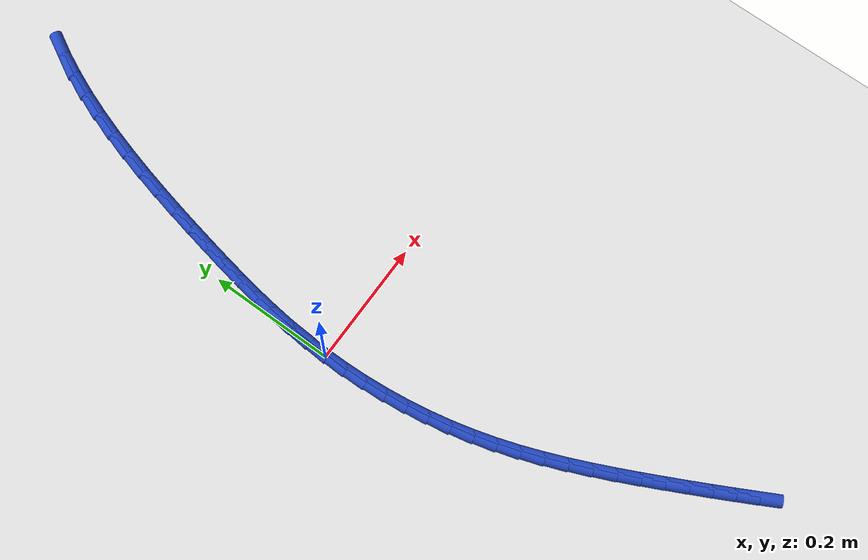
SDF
<sdf version="1.6">
 <world name="default">
  <model name="ground_plane">
   <static>1</static>
   <link name="link">
    <collision name="collision">
     <geometry><plane><normal>0 0 1</normal><size>100 100</size></plane></geometry>
     <surface><friction><ode><mu>100</mu><mu2>50</mu2></ode></friction></surface>
    </collision>
    <visual name="visual">
     <cast_shadows>0</cast_shadows>
     <geometry><plane><normal>0 0 1</normal><size>100 100</size></plane></geometry>
     <material>
      <script><uri>file://media/materials/scripts/gazebo.material</uri><name>Gazebo/WhiteGlow</name></script>
     </material>
    </visual>
   </link>
  </model>
  <model name="line">
   <link name="link_0">
    <pose>0.0 -4.85722573273506e-17 0.01 0 1.57 1.5344831415001807</pose>
    <collision name="collision">
     <geometry><cylinder><radius>0.01</radius><length>0.08</length></cylinder></geometry>
    </collision>
    <visual name="visual">
     <material>
      <script><name>Gazebo/Blue</name><uri>file://media/materials/scripts/gazebo.material</uri></script>
     </material>
     <geometry><cylinder><radius>0.01</radius><length>0.08</length></cylinder></geometry>
    </visual>
   </link>
   <link name="link_1">
    <pose>0.001230028604127636 0.03385789179870531 0.01 0 1.57 1.4982256026668357</pose>
    <collision name="collision">
     <geometry><cylinder><radius>0.01</radius><length>0.08</length></cylinder></geometry>
    </collision>
    <visual name="visual">
     <material>
      <script><name>Gazebo/Blue</name><uri>file://media/materials/scripts/gazebo.material</uri></script>
     </material>
     <geometry><cylinder><radius>0.01</radius><length>0.08</length></cylinder></geometry>
    </visual>
   </link>
   <link name="link_2">
    <pose>0.0036779097574545115 0.06752962939858016 0.01 0 1.57 1.4656631178485222</pose>
    <collision name="collision">
     <geometry><cylinder><radius>0.01</radius><length>0.08</length></cylinder></geometry>
    </collision>
    <visual name="visual">
     <material>
      <script><name>Gazebo/Blue</name><uri>file://media/materials/scripts/gazebo.material</uri></script>
     </material>
     <geometry><cylinder><radius>0.01</radius><length>0.08</length></cylinder></geometry>
    </visual>
   </link>
   <link name="link_3">
    <pose>0.007231691294133859 0.10120765186294339 0.01 0 1.57 1.4373507270346766</pose>
    <collision name="collision">
     <geometry><cylinder><radius>0.01</radius><length>0.08</length></cylinder></geometry>
    </collision>
    <visual name="visual">
     <material>
      <script><name>Gazebo/Blue</name><uri>file://media/materials/scripts/gazebo.material</uri></script>
     </material>
     <geometry><cylinder><radius>0.01</radius><length>0.08</length></cylinder></geometry>
    </visual>
   </link>
   <link name="link_4">
    <pose>0.01177942104831893 0.13508439825511404 0.01 0 1.57 1.4136534350680687</pose>
    <collision name="collision">
     <geometry><cylinder><radius>0.01</radius><length>0.08</length></cylinder></geometry>
    </collision>
    <visual name="visual">
     <material>
      <script><name>Gazebo/Blue</name><uri>file://media/materials/scripts/gazebo.material</uri></script>
     </material>
     <geometry><cylinder><radius>0.01</radius><length>0.08</length></cylinder></geometry>
    </visual>
   </link>
   <link name="link_5">
    <pose>0.01720914685416297 0.16935230763841097 0.01 0 1.57 1.3947469647410982</pose>
    <collision name="collision">
     <geometry><cylinder><radius>0.01</radius><length>0.08</length></cylinder></geometry>
    </collision>
    <visual name="visual">
     <material>
      <script><name>Gazebo/Blue</name><uri>file://media/materials/scripts/gazebo.material</uri></script>
     </material>
     <geometry><cylinder><radius>0.01</radius><length>0.08</length></cylinder></geometry>
    </visual>
   </link>
   <link name="link_6">
    <pose>0.023408916545819225 0.20420381907615312 0.01 0 1.57 1.3806345713154973</pose>
    <collision name="collision">
     <geometry><cylinder><radius>0.01</radius><length>0.08</length></cylinder></geometry>
    </collision>
    <visual name="visual">
     <material>
      <script><name>Gazebo/Blue</name><uri>file://media/materials/scripts/gazebo.material</uri></script>
     </material>
     <geometry><cylinder><radius>0.01</radius><length>0.08</length></cylinder></geometry>
    </visual>
   </link>
   <link name="link_7">
    <pose>0.030266777957440927 0.2398313716316595 0.01 0 1.57 1.3710185096209477</pose>
    <collision name="collision">
     <geometry><cylinder><radius>0.01</radius><length>0.08</length></cylinder></geometry>
    </collision>
    <visual name="visual">
     <material>
      <script><name>Gazebo/Blue</name><uri>file://media/materials/scripts/gazebo.material</uri></script>
     </material>
     <geometry><cylinder><radius>0.01</radius><length>0.08</length></cylinder></geometry>
    </visual>
   </link>
   <link name="link_8">
    <pose>0.03767494799383224 0.2764187698021842 0.01 0 1.57 1.3617506165100015</pose>
    <collision name="collision">
     <geometry><cylinder><radius>0.01</radius><length>0.08</length></cylinder></geometry>
    </collision>
    <visual name="visual">
     <material>
      <script><name>Gazebo/Blue</name><uri>file://media/materials/scripts/gazebo.material</uri></script>
     </material>
     <geometry><cylinder><radius>0.01</radius><length>0.08</length></cylinder></geometry>
    </visual>
   </link>
   <link name="link_9">
    <pose>0.04563246628902441 0.3139285774320988 0.01 0 1.57 1.3486553953474039</pose>
    <collision name="collision">
     <geometry><cylinder><radius>0.01</radius><length>0.08</length></cylinder></geometry>
    </collision>
    <visual name="visual">
     <material>
      <script><name>Gazebo/Blue</name><uri>file://media/materials/scripts/gazebo.material</uri></script>
     </material>
     <geometry><cylinder><radius>0.01</radius><length>0.08</length></cylinder></geometry>
    </visual>
   </link>
   <link name="link_10">
    <pose>0.05425164777208343 0.35208875379790483 0.01 0 1.57 1.3315220033120312</pose>
    <collision name="collision">
     <geometry><cylinder><radius>0.01</radius><length>0.08</length></cylinder></geometry>
    </collision>
    <visual name="visual">
     <material>
      <script><name>Gazebo/Blue</name><uri>file://media/materials/scripts/gazebo.material</uri></script>
     </material>
     <geometry><cylinder><radius>0.01</radius><length>0.08</length></cylinder></geometry>
    </visual>
   </link>
   <link name="link_11">
    <pose>0.06365026834764892 0.3906159479445643 0.01 0 1.57 1.3102034624673788</pose>
    <collision name="collision">
     <geometry><cylinder><radius>0.01</radius><length>0.08</length></cylinder></geometry>
    </collision>
    <visual name="visual">
     <material>
      <script><name>Gazebo/Blue</name><uri>file://media/materials/scripts/gazebo.material</uri></script>
     </material>
     <geometry><cylinder><radius>0.01</radius><length>0.08</length></cylinder></geometry>
    </visual>
   </link>
   <link name="link_12">
    <pose>0.07394610392036047 0.4292268089170389 0.01 0 1.57 1.284423318271676</pose>
    <collision name="collision">
     <geometry><cylinder><radius>0.01</radius><length>0.08</length></cylinder></geometry>
    </collision>
    <visual name="visual">
     <material>
      <script><name>Gazebo/Blue</name><uri>file://media/materials/scripts/gazebo.material</uri></script>
     </material>
     <geometry><cylinder><radius>0.01</radius><length>0.08</length></cylinder></geometry>
    </visual>
   </link>
   <link name="link_13">
    <pose>0.08525693039485763 0.46763798576029014 0.01 0 1.57 1.2537781405655828</pose>
    <collision name="collision">
     <geometry><cylinder><radius>0.01</radius><length>0.08</length></cylinder></geometry>
    </collision>
    <visual name="visual">
     <material>
      <script><name>Gazebo/Blue</name><uri>file://media/materials/scripts/gazebo.material</uri></script>
     </material>
     <geometry><cylinder><radius>0.01</radius><length>0.08</length></cylinder></geometry>
    </visual>
   </link>
   <link name="link_14">
    <pose>0.09770052367578003 0.5055661275192804 0.01 0 1.57 1.2177357412604168</pose>
    <collision name="collision">
     <geometry><cylinder><radius>0.01</radius><length>0.08</length></cylinder></geometry>
    </collision>
    <visual name="visual">
     <material>
      <script><name>Gazebo/Blue</name><uri>file://media/materials/scripts/gazebo.material</uri></script>
     </material>
     <geometry><cylinder><radius>0.01</radius><length>0.08</length></cylinder></geometry>
    </visual>
   </link>
   <link name="link_15">
    <pose>0.11139465966776724 0.5427278832389709 0.01 0 1.57 1.175632929030025</pose>
    <collision name="collision">
     <geometry><cylinder><radius>0.01</radius><length>0.08</length></cylinder></geometry>
    </collision>
    <visual name="visual">
     <material>
      <script><name>Gazebo/Blue</name><uri>file://media/materials/scripts/gazebo.material</uri></script>
     </material>
     <geometry><cylinder><radius>0.01</radius><length>0.08</length></cylinder></geometry>
    </visual>
   </link>
   <link name="link_16">
    <pose>0.1264571142754589 0.5788399019643242 0.01 0 1.57 1.1266782590041369</pose>
    <collision name="collision">
     <geometry><cylinder><radius>0.01</radius><length>0.08</length></cylinder></geometry>
    </collision>
    <visual name="visual">
     <material>
      <script><name>Gazebo/Blue</name><uri>file://media/materials/scripts/gazebo.material</uri></script>
     </material>
     <geometry><cylinder><radius>0.01</radius><length>0.08</length></cylinder></geometry>
    </visual>
   </link>
   <link name="link_17">
    <pose>0.14300566340349452 0.6136188327403014 0.01 0 1.57 1.0699683712431356</pose>
    <collision name="collision">
     <geometry><cylinder><radius>0.01</radius><length>0.08</length></cylinder></geometry>
    </collision>
    <visual name="visual">
     <material>
      <script><name>Gazebo/Blue</name><uri>file://media/materials/scripts/gazebo.material</uri></script>
     </material>
     <geometry><cylinder><radius>0.01</radius><length>0.08</length></cylinder></geometry>
    </visual>
   </link>
   <link name="link_221">
    <pose>0.1937015503654788 -0.6169206999003256 0.01 0 1.57 -1.0871991479707328</pose>
    <collision name="collision">
     <geometry><cylinder><radius>0.01</radius><length>0.08</length></cylinder></geometry>
    </collision>
    <visual name="visual">
     <material>
      <script><name>Gazebo/Blue</name><uri>file://media/materials/scripts/gazebo.material</uri></script>
     </material>
     <geometry><cylinder><radius>0.01</radius><length>0.08</length></cylinder></geometry>
    </visual>
   </link>
   <link name="link_222">
    <pose>0.17843159202954545 -0.5878456751418738 0.01 0 1.57 -1.095413583711483</pose>
    <collision name="collision">
     <geometry><cylinder><radius>0.01</radius><length>0.08</length></cylinder></geometry>
    </collision>
    <visual name="visual">
     <material>
      <script><name>Gazebo/Blue</name><uri>file://media/materials/scripts/gazebo.material</uri></script>
     </material>
     <geometry><cylinder><radius>0.01</radius><length>0.08</length></cylinder></geometry>
    </visual>
   </link>
   <link name="link_223">
    <pose>0.16331525160750957 -0.5584796547372765 0.01 0 1.57 -1.1027135323467996</pose>
    <collision name="collision">
     <geometry><cylinder><radius>0.01</radius><length>0.08</length></cylinder></geometry>
    </collision>
    <visual name="visual">
     <material>
      <script><name>Gazebo/Blue</name><uri>file://media/materials/scripts/gazebo.material</uri></script>
     </material>
     <geometry><cylinder><radius>0.01</radius><length>0.08</length></cylinder></geometry>
    </visual>
   </link>
   <link name="link_224">
    <pose>0.14829178412848165 -0.5287629519840576 0.01 0 1.57 -1.1090677610092008</pose>
    <collision name="collision">
     <geometry><cylinder><radius>0.01</radius><length>0.08</length></cylinder></geometry>
    </collision>
    <visual name="visual">
     <material>
      <script><name>Gazebo/Blue</name><uri>file://media/materials/scripts/gazebo.material</uri></script>
     </material>
     <geometry><cylinder><radius>0.01</radius><length>0.08</length></cylinder></geometry>
    </visual>
   </link>
   <link name="link_225">
    <pose>0.13330044845055133 -0.4986358811280829 0.01 0 1.57 -1.1155729341279284</pose>
    <collision name="collision">
     <geometry><cylinder><radius>0.01</radius><length>0.08</length></cylinder></geometry>
    </collision>
    <visual name="visual">
     <material>
      <script><name>Gazebo/Blue</name><uri>file://media/materials/scripts/gazebo.material</uri></script>
     </material>
     <geometry><cylinder><radius>0.01</radius><length>0.08</length></cylinder></geometry>
    </visual>
   </link>
   <link name="link_226">
    <pose>0.11832856525822023 -0.4680506601500107 0.01 0 1.57 -1.126073200144328</pose>
    <collision name="collision">
     <geometry><cylinder><radius>0.01</radius><length>0.08</length></cylinder></geometry>
    </collision>
    <visual name="visual">
     <material>
      <script><name>Gazebo/Blue</name><uri>file://media/materials/scripts/gazebo.material</uri></script>
     </material>
     <geometry><cylinder><radius>0.01</radius><length>0.08</length></cylinder></geometry>
    </visual>
   </link>
   <link name="link_227">
    <pose>0.10353149504084772 -0.4370011263658576 0.01 0 1.57 -1.1413569657661118</pose>
    <collision name="collision">
     <geometry><cylinder><radius>0.01</radius><length>0.08</length></cylinder></geometry>
    </collision>
    <visual name="visual">
     <material>
      <script><name>Gazebo/Blue</name><uri>file://media/materials/scripts/gazebo.material</uri></script>
     </material>
     <geometry><cylinder><radius>0.01</radius><length>0.08</length></cylinder></geometry>
    </visual>
   </link>
   <link name="link_228">
    <pose>0.08910130180356221 -0.4054902076516598 0.01 0 1.57 -1.1614183565544454</pose>
    <collision name="collision">
     <geometry><cylinder><radius>0.01</radius><length>0.08</length></cylinder></geometry>
    </collision>
    <visual name="visual">
     <material>
      <script><name>Gazebo/Blue</name><uri>file://media/materials/scripts/gazebo.material</uri></script>
     </material>
     <geometry><cylinder><radius>0.01</radius><length>0.08</length></cylinder></geometry>
    </visual>
   </link>
   <link name="link_229">
    <pose>0.07523004955149211 -0.3735208318834528 0.01 0 1.57 -1.1863007672256123</pose>
    <collision name="collision">
     <geometry><cylinder><radius>0.01</radius><length>0.08</length></cylinder></geometry>
    </collision>
    <visual name="visual">
     <material>
      <script><name>Gazebo/Blue</name><uri>file://media/materials/scripts/gazebo.material</uri></script>
     </material>
     <geometry><cylinder><radius>0.01</radius><length>0.08</length></cylinder></geometry>
    </visual>
   </link>
   <link name="link_230">
    <pose>0.06210980228976547 -0.34109592693727203 0.01 0 1.57 -1.216082006120413</pose>
    <collision name="collision">
     <geometry><cylinder><radius>0.01</radius><length>0.08</length></cylinder></geometry>
    </collision>
    <visual name="visual">
     <material>
      <script><name>Gazebo/Blue</name><uri>file://media/materials/scripts/gazebo.material</uri></script>
     </material>
     <geometry><cylinder><radius>0.01</radius><length>0.08</length></cylinder></geometry>
    </visual>
   </link>
   <link name="link_231">
    <pose>0.04993262402351139 -0.30821842068915484 0.01 0 1.57 -1.2508565917714747</pose>
    <collision name="collision">
     <geometry><cylinder><radius>0.01</radius><length>0.08</length></cylinder></geometry>
    </collision>
    <visual name="visual">
     <material>
      <script><name>Gazebo/Blue</name><uri>file://media/materials/scripts/gazebo.material</uri></script>
     </material>
     <geometry><cylinder><radius>0.01</radius><length>0.08</length></cylinder></geometry>
    </visual>
   </link>
   <link name="link_232">
    <pose>0.03889057875785792 -0.2748912410151364 0.01 0 1.57 -1.2905615238055121</pose>
    <collision name="collision">
     <geometry><cylinder><radius>0.01</radius><length>0.08</length></cylinder></geometry>
    </collision>
    <visual name="visual">
     <material>
      <script><name>Gazebo/Blue</name><uri>file://media/materials/scripts/gazebo.material</uri></script>
     </material>
     <geometry><cylinder><radius>0.01</radius><length>0.08</length></cylinder></geometry>
    </visual>
   </link>
   <link name="link_233">
    <pose>0.029170883270046376 -0.2411198498923479 0.01 0 1.57 -1.332129685118121</pose>
    <collision name="collision">
     <geometry><cylinder><radius>0.01</radius><length>0.08</length></cylinder></geometry>
    </collision>
    <visual name="visual">
     <material>
      <script><name>Gazebo/Blue</name><uri>file://media/materials/scripts/gazebo.material</uri></script>
     </material>
     <geometry><cylinder><radius>0.01</radius><length>0.08</length></cylinder></geometry>
    </visual>
   </link>
   <link name="link_234">
    <pose>0.020860209817091552 -0.20696227335819514 0.01 0 1.57 -1.3727708320776575</pose>
    <collision name="collision">
     <geometry><cylinder><radius>0.01</radius><length>0.08</length></cylinder></geometry>
    </collision>
    <visual name="visual">
     <material>
      <script><name>Gazebo/Blue</name><uri>file://media/materials/scripts/gazebo.material</uri></script>
     </material>
     <geometry><cylinder><radius>0.01</radius><length>0.08</length></cylinder></geometry>
    </visual>
   </link>
   <link name="link_235">
    <pose>0.013950413511139095 -0.17252610727354903 0.01 0 1.57 -1.4125939279229263</pose>
    <collision name="collision">
     <geometry><cylinder><radius>0.01</radius><length>0.08</length></cylinder></geometry>
    </collision>
    <visual name="visual">
     <material>
      <script><name>Gazebo/Blue</name><uri>file://media/materials/scripts/gazebo.material</uri></script>
     </material>
     <geometry><cylinder><radius>0.01</radius><length>0.08</length></cylinder></geometry>
    </visual>
   </link>
   <link name="link_236">
    <pose>0.00842964894686293 -0.1379208821071833 0.01 0 1.57 -1.451827904507821</pose>
    <collision name="collision">
     <geometry><cylinder><radius>0.01</radius><length>0.08</length></cylinder></geometry>
    </collision>
    <visual name="visual">
     <material>
      <script><name>Gazebo/Blue</name><uri>file://media/materials/scripts/gazebo.material</uri></script>
     </material>
     <geometry><cylinder><radius>0.01</radius><length>0.08</length></cylinder></geometry>
    </visual>
   </link>
   <link name="link_237">
    <pose>0.004286070718936998 -0.10325612832787186 0.01 0 1.57 -1.4907063548615935</pose>
    <collision name="collision">
     <geometry><cylinder><radius>0.01</radius><length>0.08</length></cylinder></geometry>
    </collision>
    <visual name="visual">
     <material>
      <script><name>Gazebo/Blue</name><uri>file://media/materials/scripts/gazebo.material</uri></script>
     </material>
     <geometry><cylinder><radius>0.01</radius><length>0.08</length></cylinder></geometry>
    </visual>
   </link>
   <link name="link_238">
    <pose>0.0015078334220351825 -0.06864137640438753 0.01 0 1.57 -1.5294693354037792</pose>
    <collision name="collision">
     <geometry><cylinder><radius>0.01</radius><length>0.08</length></cylinder></geometry>
    </collision>
    <visual name="visual">
     <material>
      <script><name>Gazebo/Blue</name><uri>file://media/materials/scripts/gazebo.material</uri></script>
     </material>
     <geometry><cylinder><radius>0.01</radius><length>0.08</length></cylinder></geometry>
    </visual>
   </link>
   <link name="link_239">
    <pose>8.3091650831567e-05 -0.03418615680550596 0.01 0 1.57 -1.568365767323716</pose>
    <collision name="collision">
     <geometry><cylinder><radius>0.01</radius><length>0.08</length></cylinder></geometry>
    </collision>
    <visual name="visual">
     <material>
      <script><name>Gazebo/Blue</name><uri>file://media/materials/scripts/gazebo.material</uri></script>
     </material>
     <geometry><cylinder><radius>0.01</radius><length>0.08</length></cylinder></geometry>
    </visual>
   </link>
   <link name="link_240">
    <pose>-4.336808689942018e-18 -9.71445146547012e-17 0.01 0 1.57 1.5339362794726394</pose>
    <collision name="collision">
     <geometry><cylinder><radius>0.01</radius><length>0.08</length></cylinder></geometry>
    </collision>
    <visual name="visual">
     <material>
      <script><name>Gazebo/Blue</name><uri>file://media/materials/scripts/gazebo.material</uri></script>
     </material>
     <geometry><cylinder><radius>0.01</radius><length>0.08</length></cylinder></geometry>
    </visual>
   </link>
   <link name="link_241">
    <pose>0.0012467130642144063 0.033807563543356345 0.01 0 1.57 1.4939755482206682</pose>
    <collision name="collision">
     <geometry><cylinder><radius>0.01</radius><length>0.08</length></cylinder></geometry>
    </collision>
    <visual name="visual">
     <material>
      <script><name>Gazebo/Blue</name><uri>file://media/materials/scripts/gazebo.material</uri></script>
     </material>
     <geometry><cylinder><radius>0.01</radius><length>0.08</length></cylinder></geometry>
    </visual>
   </link>
   <link name="link_242">
    <pose>0.0038113854381487348 0.06712700335578951 0.01 0 1.57 1.5140785022580432</pose>
    <collision name="collision">
     <geometry><cylinder><radius>0.01</radius><length>0.08</length></cylinder></geometry>
    </collision>
    <visual name="visual">
     <material>
      <script><name>Gazebo/Blue</name><uri>file://media/materials/scripts/gazebo.material</uri></script>
     </material>
     <geometry><cylinder><radius>0.01</radius><length>0.08</length></cylinder></geometry>
    </visual>
   </link>
  </model>
 </world>
</sdf>
